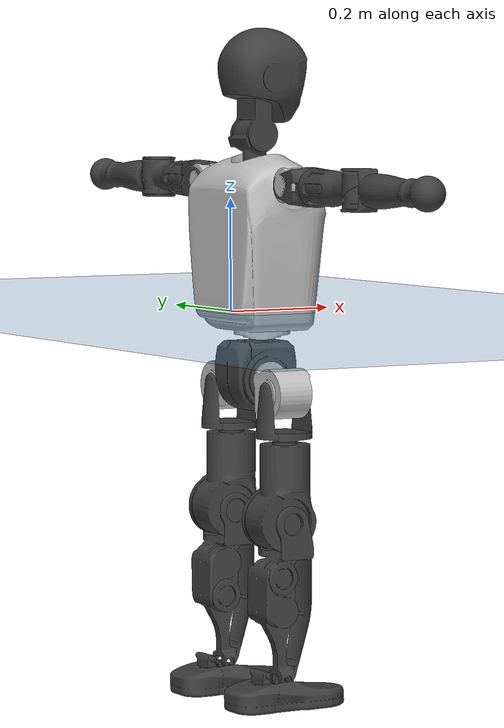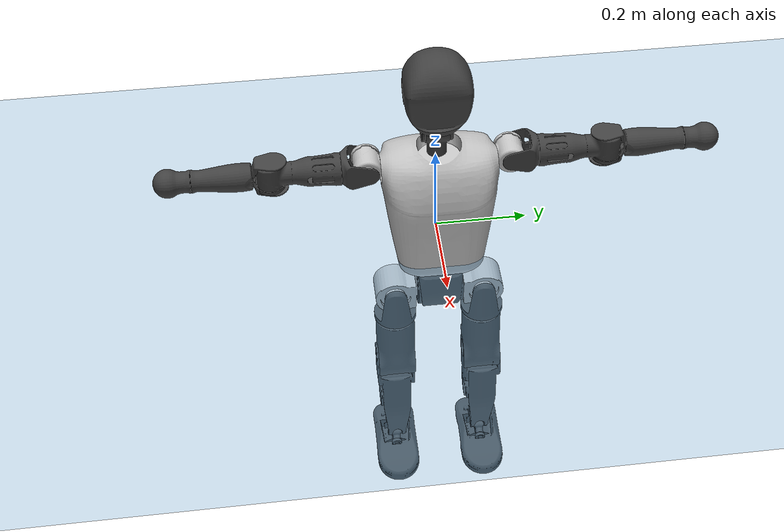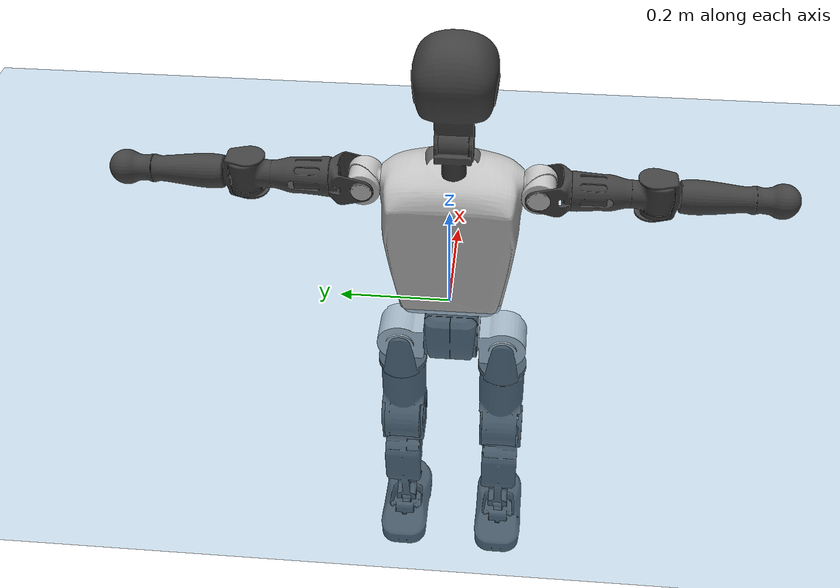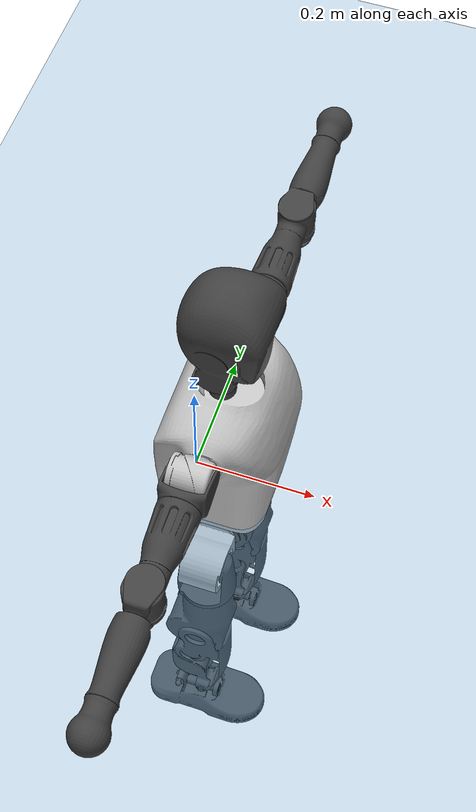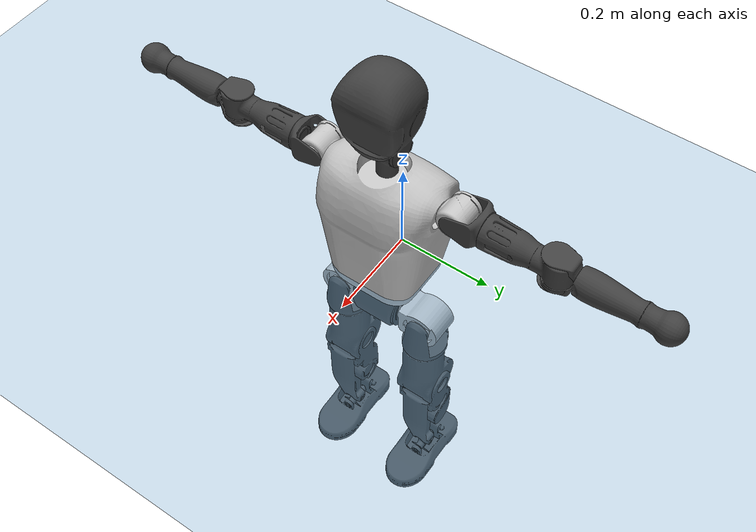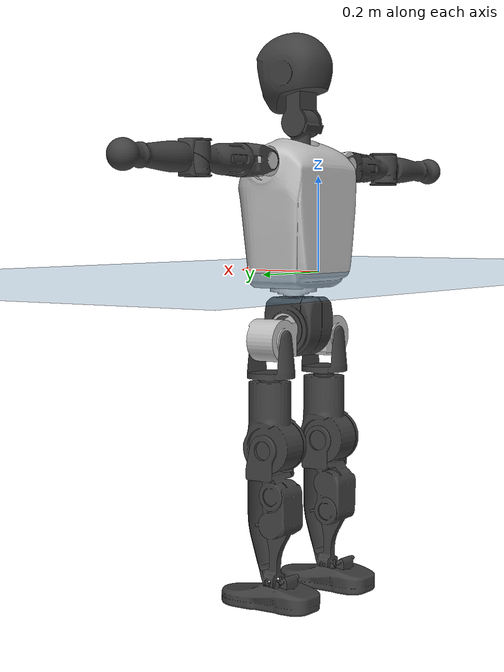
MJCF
<mujoco model="T1">
  <compiler angle="radian" assetdir="assets" balanceinertia="true" inertiafromgeom="false"/>

  <option timestep="0.005" density="1.2" viscosity="2e-05"/>

  <size nkey="1"/>

  <visual>
    <quality shadowsize="8192"/>
    <map shadowclip="0.5"/>
  </visual>

  <default>
    <default class="/">
      <joint armature="0.01" damping="0.01" frictionloss="0.1"/>
      <geom contype="0" conaffinity="0" group="1" solref="-1000 -80"/>
      <site size="0.01 0.005 0.005" group="5"/>
      <general forcelimited="true" biastype="affine" gainprm="25" biasprm="0 -25 -0.6"/>
      <default class="t1">
        <geom rgba="0.25 0.25 0.25 1"/>
        <default class="visual">
          <geom type="mesh" group="2"/>
        </default>
        <default class="collision">
          <geom group="3"/>
        </default>
        <default class="foot">
          <geom size="0.1115 0.05 0.015" type="box" condim="6" group="4" priority="1" solimp="0.015 1 0.015"/>
        </default>
        <default class="reward_collision_sphere">
          <geom group="5" rgba="1 0 0 1"/>
        </default>
      </default>
    </default>
  </default>

  <asset>
    <texture type="skybox" colorspace="auto" name="//unnamed_texture_0" builtin="gradient" rgb1="0.95 0.95 0.95" rgb2="0.95 0.95 0.95" width="100" height="600"/>
    <texture type="2d" colorspace="auto" name="texplane" builtin="checker" rgb1="0.345 0.575 0.748" rgb2="0.345 0.575 0.748" markrgb="1 1 1" width="512" height="512"/>
    <material name="MatPlane" class="/" texture="texplane" texuniform="true" texrepeat="2 2" specular="0.9"/>
    <mesh name="Trunk" class="/" file="Trunk.stl"/>
    <mesh name="H1" class="/" file="H1.stl"/>
    <mesh name="H2" class="/" file="H2.stl"/>
    <mesh name="AL1" class="/" file="AL1.stl"/>
    <mesh name="AL2" class="/" file="AL2.stl"/>
    <mesh name="AL3" class="/" file="AL3.stl"/>
    <mesh name="left_hand_link" class="/" file="left_hand_link.stl"/>
    <mesh name="AR1" class="/" file="AR1.stl"/>
    <mesh name="AR2" class="/" file="AR2.stl"/>
    <mesh name="AR3" class="/" file="AR3.stl"/>
    <mesh name="right_hand_link" class="/" file="right_hand_link.stl"/>
    <mesh name="Waist" class="/" file="Waist.stl"/>
    <mesh name="Hip_Pitch_Left" class="/" file="Hip_Pitch_Left.stl"/>
    <mesh name="Hip_Roll_Left" class="/" file="Hip_Roll_Left.stl"/>
    <mesh name="Hip_Yaw_Left" class="/" file="Hip_Yaw_Left.stl"/>
    <mesh name="Shank_Left" class="/" file="Shank_Left.stl"/>
    <mesh name="Ankle_Cross_Left" class="/" file="Ankle_Cross_Left.stl"/>
    <mesh name="left_foot_link" class="/" file="left_foot_link.stl"/>
    <mesh name="Hip_Pitch_Right" class="/" file="Hip_Pitch_Right.stl"/>
    <mesh name="Hip_Roll_Right" class="/" file="Hip_Roll_Right.stl"/>
    <mesh name="Hip_Yaw_Right" class="/" file="Hip_Yaw_Right.stl"/>
    <mesh name="Shank_Right" class="/" file="Shank_Right.stl"/>
    <mesh name="Ankle_Cross_Right" class="/" file="Ankle_Cross_Right.stl"/>
    <mesh name="right_foot_link" class="/" file="right_foot_link.stl"/>
  </asset>

  <worldbody>
    <geom name="floor" class="/" size="100 100 0.125" type="plane" group="0" material="MatPlane"/>
    <light name="toplight_shadow" class="/" pos="0 0 5" dir="0.0990148 0.0990148 -0.990148" type="directional" ambient="0.04 0.04 0.04" diffuse="0.55 0.55 0.55" specular="0.12 0.12 0.12"/>
    <light name="toplight_fill" class="/" pos="0 0 5" dir="0.0990148 0.0990148 -0.990148" type="directional" castshadow="false" ambient="0.04 0.04 0.04" diffuse="0.3 0.3 0.3" specular="0.08 0.08 0.08"/>
    <body name="trunk" childclass="t1" pos="0.00128966 -0.000305981 -0.000279902" quat="1 -0.000120095 -0.00028006 0.000325317">
      <inertial pos="0.0423984 -0.000233595 0.108734" quat="0.999949 0.00270669 -0.00928847 0.00306453" mass="9.48732" diaginertia="0.0266001 0.0585744 0.0677008"/>
      <joint name="//unnamed_joint_0" type="free" armature="0" damping="0" frictionloss="0"/>
      <geom name="//unnamed_geom_1" class="visual" rgba="0.76 0.76 0.76 1" mesh="Trunk"/>
      <geom name="//unnamed_geom_2" class="collision" size="0.0690037 0.0920049 0.138007" pos="0.0465709 0 0.124433" type="box"/>
      <geom name="//unnamed_geom_3" class="reward_collision_sphere" size="0.105806" pos="0.0465709 0 0.103694"/>
      <geom name="//unnamed_geom_4" class="reward_collision_sphere" size="0.0138007" pos="0.0465709 0.080497 0"/>
      <geom name="//unnamed_geom_5" class="reward_collision_sphere" size="0.0138007" pos="0.0465709 -0.080497 0"/>
      <geom name="//unnamed_geom_6" class="reward_collision_sphere" size="0.0138007" pos="0.0465709 0.101331 0.18665"/>
      <geom name="//unnamed_geom_7" class="reward_collision_sphere" size="0.0138007" pos="0.0465709 -0.101331 0.18665"/>
      <site name="imu" pos="-0.0130273 0.00128506 0.00859889" size="0.00920049"/>
      <camera name="track" pos="0 -1.89405 0" quat="0.707107 0.707107 0 0" mode="trackcom"/>
      <camera name="ego_camera" pos="0.0946941 0 0.435516" quat="-0.5 -0.5 0.5 0.5"/>
      <body name="H1" pos="0.0454839 -0.00290031 0.249116" quat="1 3.8786e-05 0.000233137 -0.000532176">
        <inertial pos="-0.00228334 -0.00199711 0.0594342" quat="0.765262 -0.0249318 -0.00360262 0.643225" mass="0.353206" diaginertia="6.82243e-05 0.000163918 0.000178724"/>
        <joint name="AAHead_yaw" pos="0 0 0" axis="0.00187519 -0.0130497 0.999913" range="-1.58145 1.55546" armature="0.0102041" damping="0.0065861" frictionloss="0.0945575"/>
        <geom name="//unnamed_geom_8" class="visual" mesh="H1"/>
        <body name="H2" pos="-0.0014099 -0.000463856 0.0640828" quat="0.999999 -1.41864e-05 0.00101711 -4.1587e-05">
          <inertial pos="0.00570066 -0.00172719 0.102119" quat="0.988623 0.103241 -0.0782316 -0.0764554" mass="0.51084" diaginertia="0.000584095 0.00148713 0.00210189"/>
          <joint name="Head_pitch" pos="0 0 0" axis="-0.000291336 -1 -2.32265e-05" range="-1.24313 0.348451" armature="0.00978918" damping="0.0104427" frictionloss="0.0927608"/>
          <geom name="//unnamed_geom_9" class="visual" mesh="H2"/>
          <geom name="//unnamed_geom_10" class="collision" size="0.0736039" pos="0.00776181 0 0.114064"/>
          <geom name="//unnamed_geom_11" class="reward_collision_sphere" size="0.0828044" pos="0.0155236 0 0.103694"/>
        </body>
      </body>
      <body name="AL1" pos="0.0458487 0.103961 0.228105" quat="1 4.13825e-06 0.000441393 -3.39441e-06">
        <inertial pos="-0.00310948 0.0450585 -0.0019873" quat="0.503824 0.491666 -0.505585 0.498809" mass="0.416746" diaginertia="0.000392114 0.00100045 0.000351424"/>
        <joint name="Left_Shoulder_Pitch" pos="0 0 0" axis="0.0047241 0.999986 -0.00248486" stiffness="0.0104214" range="-3.30835 1.2186" armature="0.00974952" damping="0.00544163" frictionloss="0.0852012"/>
        <geom name="//unnamed_geom_12" class="visual" rgba="0.76 0.76 0.76 1" mesh="AL1"/>
        <body name="AL2" pos="-0.000866745 0.047786 0.00136587" quat="1 -5.17182e-06 -0.00018705 4.15781e-05">
          <inertial pos="0.00296691 0.0370017 0.000176471" quat="0.488152 0.511824 -0.487842 0.511619" mass="0.125455" diaginertia="0.000119528 0.000280509 0.000215795"/>
          <joint name="Left_Shoulder_Roll" pos="0 0 0" axis="-1 0.000921211 0.000204302" range="-1.54627 1.691" armature="0.0092963" damping="0.0198249" frictionloss="0.0929356"/>
          <geom name="//unnamed_geom_13" class="visual" mesh="AL2"/>
          <body name="AL3" pos="0.00324982 0.0571533 -0.00024875" quat="1 -7.55561e-05 0.000473546 0.000428957">
            <inertial pos="5.22352e-05 0.0796719 0.00189717" quat="0.713368 0.700783 -4.05912e-06 0.00304282" mass="0.791452" diaginertia="0.00367675 0.00964901 0.000735523"/>
            <joint name="Left_Elbow_Pitch" pos="0 0 0" axis="-0.00010562 -0.999997 0.00256576" range="-2.27538 2.31244" armature="0.00809646" damping="0.00433671" frictionloss="0.0901408"/>
            <geom name="//unnamed_geom_14" class="visual" mesh="AL3"/>
            <geom name="//unnamed_geom_15" class="collision" size="0.0276015 0.0690037" pos="0 0.0473512 0" quat="0.707105 0.707108 0 0" type="cylinder"/>
            <geom name="//unnamed_geom_16" class="reward_collision_sphere" size="0.0331218"/>
            <body name="left_hand_link" pos="7.51119e-05 0.139491 -0.000135159" quat="1 -0.000265929 -0.000415975 -0.000829171">
              <inertial pos="0.00247119 0.101625 0.00111347" quat="0.709609 0.704593 0.00172632 0.00084468" mass="0.25122" diaginertia="0.0022889 0.00621942 0.000250236"/>
              <joint name="Left_Elbow_Yaw" pos="0 0 0" axis="-0.00164662 0.00158695 0.999997" range="-2.43562 -0.017836" armature="0.0101122" damping="0.0204773" frictionloss="0.101268"/>
              <geom name="//unnamed_geom_17" class="visual" mesh="left_hand_link"/>
              <geom name="//unnamed_geom_18" class="collision" size="0.0276015 0.0805043" pos="0 0.123113 0" quat="0.707105 0.707108 0 0" type="cylinder"/>
              <geom name="//unnamed_geom_19" class="reward_collision_sphere" size="0.0460025"/>
              <geom name="//unnamed_geom_20" class="reward_collision_sphere" size="0.0322017" pos="0 0.104173 0"/>
              <geom name="//unnamed_geom_21" class="reward_collision_sphere" size="0.0322017" pos="0 0.20361 0"/>
            </body>
          </body>
        </body>
      </body>
      <body name="AR1" pos="0.0458355 -0.102271 0.227104" quat="1 0.000449405 0.000464145 0.000203312">
        <inertial pos="-0.000844592 -0.0436882 8.3941e-07" quat="0.504511 0.495388 -0.503803 0.496227" mass="0.413014" diaginertia="0.000389579 0.000991391 0.000349271"/>
        <joint name="Right_Shoulder_Pitch" pos="0 0 0" axis="0.00165645 -0.999999 -0.000403067" stiffness="0.01193" range="-1.21605 3.29094" armature="0.0097933" damping="0" frictionloss="0.0884762"/>
        <geom name="//unnamed_geom_22" class="visual" rgba="0.76 0.76 0.76 1" mesh="AR1"/>
        <body name="AR2" pos="0.00121563 -0.0437392 -0.00251741" quat="1 -0.000221024 -0.000208279 -3.24274e-05">
          <inertial pos="0.00212929 -0.0340189 -0.00239367" quat="0.512128 0.487766 -0.511855 0.487662" mass="0.126988" diaginertia="0.000114924 0.000258751 0.00021448"/>
          <joint name="Right_Shoulder_Roll" pos="0 0 0" axis="-0.999901 -0.00303231 0.0137725" range="-1.68756 1.58199" armature="0.00917382" damping="0.0214785" frictionloss="0.0895118"/>
          <geom name="//unnamed_geom_23" class="visual" mesh="AR2"/>
          <body name="AR3" pos="0.00109234 -0.0563965 -0.000565156" quat="1 -0.000126857 -0.000121724 9.50151e-05">
            <inertial pos="-0.00294378 -0.0815335 -0.000391637" quat="0.706789 0.707422 -0.0017072 -0.000963404" mass="0.792209" diaginertia="0.00365152 0.00970289 0.000765822"/>
            <joint name="Right_Elbow_Pitch" pos="0 0 0" axis="0.00112693 0.999999 0.000795258" range="-2.27194 2.243" armature="0.00932459" damping="0.0140326" frictionloss="0.0800929"/>
            <geom name="//unnamed_geom_24" class="visual" mesh="AR3"/>
            <geom name="//unnamed_geom_25" class="collision" size="0.0276015 0.0690037" pos="0 -0.0473512 0" quat="0.707105 0.707108 0 0" type="cylinder"/>
            <geom name="//unnamed_geom_26" class="reward_collision_sphere" size="0.0331218"/>
            <body name="right_hand_link" pos="4.48284e-05 -0.138323 -0.000645174" quat="1 -0.000137346 0.000335001 0.000123555">
              <inertial pos="0.000646189 -0.102816 0.0032201" quat="0.706425 0.707788 0.000167071 0.000163464" mass="0.255998" diaginertia="0.00228342 0.00604209 0.000259642"/>
              <joint name="Right_Elbow_Yaw" pos="0 0 0" axis="-0.000113476 0.00172545 0.999999" stiffness="0.00461758" range="0.0157062 2.45487" armature="0.00906469" damping="0.00637251" frictionloss="0.0804791"/>
              <geom name="//unnamed_geom_27" class="visual" mesh="right_hand_link"/>
              <geom name="//unnamed_geom_28" class="collision" size="0.0276015 0.0805043" pos="0 -0.123113 0" quat="0.707105 0.707108 0 0" type="cylinder"/>
              <geom name="//unnamed_geom_29" class="reward_collision_sphere" size="0.0460025"/>
              <geom name="//unnamed_geom_30" class="reward_collision_sphere" size="0.0322017" pos="0 -0.104173 0"/>
              <geom name="//unnamed_geom_31" class="reward_collision_sphere" size="0.0322017" pos="0 -0.20361 0"/>
            </body>
          </body>
        </body>
      </body>
      <body name="Waist" pos="0.0490947 -0.000279619 -0.120618" quat="1 -0.000380279 0.000321112 -0.000364594">
        <inertial pos="0.00147778 -0.000453423 0.0071913" quat="0.983671 -0.00302946 -0.179922 0.00318605" mass="1.96342" diaginertia="0.00155647 0.0039706 0.00585215"/>
        <joint name="Waist" pos="0 0 0" axis="-0.0084084 -0.00681771 0.999941" range="-1.58906 1.55371" armature="0.00908871" damping="0.00814493" frictionloss="0.0805769"/>
        <geom name="//unnamed_geom_32" class="visual" mesh="Waist"/>
        <body name="Hip_Pitch_Left" pos="0.00215818 0.099028 0.000621816" quat="1 0.000677409 0.000123226 -0.000340368">
          <inertial pos="0.00073471 -0.00933618 -0.019593" quat="0.975197 0.220843 0.0145451 0.00292438" mass="0.789517" diaginertia="0.000500554 0.00113442 0.00154306"/>
          <joint name="Left_Hip_Pitch" pos="0 0 0" axis="-0.0006789 0.999999 0.000858152" stiffness="0.00286051" range="-1.78546 1.57535" armature="0.0098038" damping="0.0210339" frictionloss="0.0926886"/>
          <geom name="//unnamed_geom_33" class="visual" rgba="0.76 0.76 0.76 1" mesh="Hip_Pitch_Left"/>
          <body name="Hip_Roll_Left" pos="0.00266843 -0.000365772 -0.0211308" quat="0.999999 0.000496675 0.0013425 -0.000213563">
            <inertial pos="0.00254285 0.000922651 -0.0557095" quat="0.708979 -0.00629696 -0.00540047 0.70518" mass="0.282419" diaginertia="0.000459165 0.00111898 0.000590944"/>
            <joint name="Left_Hip_Roll" pos="0 0 0" axis="-0.999913 0.0100005 0.00865489" range="-1.51518 0.206367" armature="0.00887009" damping="0.00325505" frictionloss="0.0938134"/>
            <geom name="//unnamed_geom_34" class="visual" mesh="Hip_Roll_Left"/>
            <geom name="//unnamed_geom_35" class="reward_collision_sphere" size="0.0506027"/>
            <body name="Hip_Yaw_Left" pos="0.00144939 -0.000814877 -0.08505" quat="0.999999 0.0011704 0.0002119 -0.000541072">
              <inertial pos="-0.00778446 0.00086732 -0.0918474" quat="0.693294 -0.0361302 -0.0314761 0.71906" mass="1.69231" diaginertia="0.0075601 0.0195949 0.00315333"/>
              <joint name="Left_Hip_Yaw" pos="0 0 0" axis="-0.000563624 -0.000103742 -1" range="-0.952057 1.05593" armature="0.00921781" damping="0.00679446" frictionloss="0.101913"/>
              <geom name="//unnamed_geom_36" class="visual" mesh="Hip_Yaw_Left"/>
              <geom name="//unnamed_geom_37" class="collision" size="0.0460025 0.0736039" type="cylinder"/>
              <body name="Shank_Left" pos="-0.0113206 0.00204085 -0.138976" quat="1 -2.86999e-05 -0.00010481 -4.36492e-05">
                <inertial pos="-0.00729344 -0.000108272 -0.129886" quat="0.997807 0.00998037 -0.0306335 0.0578176" mass="1.33993" diaginertia="0.00981997 0.0273376 0.00228116"/>
                <joint name="Left_Knee_Pitch" pos="0 0 0" axis="0.00867834 0.999957 0.00335323" range="0.00227905 2.37749" armature="0.00845287" damping="0.00767966" frictionloss="0.104112"/>
                <geom name="//unnamed_geom_38" class="visual" mesh="Shank_Left"/>
                <geom name="//unnamed_geom_39" class="collision" size="0.0460025 0.0690037" pos="0 0 -0.124433" type="cylinder"/>
                <geom name="//unnamed_geom_40" class="reward_collision_sphere" size="0.0598032"/>
                <body name="Ankle_Cross_Left" pos="0.00167282 0.000277021 -0.291343" quat="1 9.16528e-06 -8.28863e-05 -7.26408e-06">
                  <inertial pos="-0.00298223 -0.000738868 -0.00820587" quat="0.442689 0.551429 0.551245 0.442811" mass="0.057204" diaginertia="8.23088e-06 1.96575e-05 1.35216e-05"/>
                  <joint name="Left_Ankle_Pitch" pos="0 0 0" axis="-0.00241325 0.999971 -0.00720889" range="-0.874441 0.32076" armature="0.0104262" damping="0.0142743" frictionloss="0.0922058"/>
                  <geom name="//unnamed_geom_41" class="visual" mesh="Ankle_Cross_Left"/>
                  <body name="left_foot_link" pos="0.00190105 -0.000113819 -0.0126841" quat="1 9.73986e-05 -2.69912e-05 4.43554e-05">
                    <inertial pos="-0.00265504 0.00150226 -0.00951249" quat="-0.00135461 0.620297 0.00239635 0.784362" mass="0.538889" diaginertia="0.000753645 0.00178983 0.00254297"/>
                    <joint name="Left_Ankle_Roll" pos="0 0 0" axis="-0.999989 0.00049164 0.00475579" range="-0.427468 0.436998" armature="0.00929752" damping="0.000353124" frictionloss="0.0949008"/>
                    <geom name="//unnamed_geom_42" class="visual" mesh="left_foot_link"/>
                    <geom name="left_foot" class="foot" size="0.101481 0.0444592 0.0140078" pos="0.00776181 0 -0.0155541"/>
                    <geom name="//unnamed_geom_44" class="reward_collision_sphere" size="0.0478426" pos="0.00776181 0 -0.0155541"/>
                    <geom name="//unnamed_geom_45" class="reward_collision_sphere" size="0.0276015" pos="0.0737372 -0.0217815 -0.0155541"/>
                    <geom name="//unnamed_geom_46" class="reward_collision_sphere" size="0.0276015" pos="-0.0543327 -0.0217815 -0.0155541"/>
                    <site name="left_foot" class="foot" pos="0.00776181 0 -0.0155541" size="0.00920049"/>
                  </body>
                </body>
              </body>
            </body>
          </body>
        </body>
        <body name="Hip_Pitch_Right" pos="-0.000333042 -0.0996211 -0.000940856" quat="1 -0.00019685 2.0571e-05 5.15456e-05">
          <inertial pos="0.00089729 0.00732469 -0.0209075" quat="0.974521 -0.223801 0.0145536 -0.0032539" mass="0.791419" diaginertia="0.00049148 0.00114901 0.00149747"/>
          <joint name="Right_Hip_Pitch" pos="0 0 0" axis="0.000489198 -0.999997 -0.00238012" range="-1.62274 1.85322" armature="0.00926329" damping="0.0190304" frictionloss="0.0801416"/>
          <geom name="//unnamed_geom_47" class="visual" rgba="0.76 0.76 0.76 1" mesh="Hip_Pitch_Right"/>
          <body name="Hip_Roll_Right" pos="0.00274896 0.00033302 -0.0216098" quat="1 0.000146085 -0.000243938 -0.000252318">
            <inertial pos="0.00194133 -0.00234583 -0.0536369" quat="0.708338 -0.00165589 -0.00673681 0.705839" mass="0.291655" diaginertia="0.000479626 0.00113127 0.000620089"/>
            <joint name="Right_Hip_Roll" pos="0 0 0" axis="-0.999889 -0.0121485 0.00865336" stiffness="0.000345642" range="-0.205374 1.59351" armature="0.00862598" damping="0.00515065" frictionloss="0.0874842"/>
            <geom name="//unnamed_geom_48" class="visual" mesh="Hip_Roll_Right"/>
            <geom name="//unnamed_geom_49" class="reward_collision_sphere" size="0.0506027"/>
            <body name="Hip_Yaw_Right" pos="-0.00103059 -0.000444934 -0.0874643" quat="1 3.89187e-05 -0.000260386 -0.000112622">
              <inertial pos="-0.00463389 0.00201025 -0.0936519" quat="0.707263 -0.0258301 -0.0283596 0.705909" mass="1.69412" diaginertia="0.00733941 0.019405 0.00314042"/>
              <joint name="Right_Hip_Yaw" pos="0 0 0" axis="0.00218666 -0.0018835 -0.999996" stiffness="0.00134827" range="-0.987119 0.98329" armature="0.00969752" damping="0.0152672" frictionloss="0.0914561"/>
              <geom name="//unnamed_geom_50" class="visual" mesh="Hip_Yaw_Right"/>
              <geom name="//unnamed_geom_51" class="collision" size="0.0460025 0.0736039" type="cylinder"/>
              <body name="Shank_Right" pos="-0.0100359 -0.00281464 -0.137462" quat="1 -2.59653e-05 8.23933e-06 -4.47152e-06">
                <inertial pos="-0.00716923 0.00215577 -0.127475" quat="0.998957 -0.00744773 -0.0309554 -0.032727" mass="1.41802" diaginertia="0.00954017 0.0258156 0.00233044"/>
                <joint name="Right_Knee_Pitch" pos="0 0 0" axis="0.00439996 -0.999984 -0.00349058" stiffness="0.000534092" range="-2.35281 0.00628406" armature="0.00918661" damping="0.00194368" frictionloss="0.0921769"/>
                <geom name="//unnamed_geom_52" class="visual" mesh="Shank_Right"/>
                <geom name="//unnamed_geom_53" class="collision" size="0.0460025 0.0690037" pos="0 0 -0.124433" type="cylinder"/>
                <geom name="//unnamed_geom_54" class="reward_collision_sphere" size="0.0598032"/>
                <body name="Ankle_Cross_Right" pos="-0.00102218 -0.00136752 -0.290017" quat="1 8.76503e-05 8.40615e-05 5.9972e-06">
                  <inertial pos="-0.00192146 -0.00202093 -0.00929663" quat="0.446311 0.559659 0.542327 0.439851" mass="0.056936" diaginertia="8.17701e-06 1.83246e-05 1.3092e-05"/>
                  <joint name="Right_Ankle_Pitch" pos="0 0 0" axis="-0.00425903 -0.999973 0.00595138" range="-0.345779 0.86926" armature="0.00985441" damping="0" frictionloss="0.0895985"/>
                  <geom name="//unnamed_geom_55" class="visual" mesh="Ankle_Cross_Right"/>
                  <body name="right_foot_link" pos="-0.000715087 -0.00151406 -0.00976921" quat="1 -2.37247e-05 1.15323e-05 6.07317e-06">
                    <inertial pos="0.000938092 -0.000457579 -0.00701885" quat="0.0026943 0.618007 -0.00159002 0.786166" mass="0.539697" diaginertia="0.000781337 0.00179593 0.00260123"/>
                    <joint name="Right_Ankle_Roll" pos="0 0 0" axis="-0.999992 -0.0037465 -0.00170573" stiffness="0.00136374" range="-0.451547 0.416187" armature="0.00943357" damping="0.0125008" frictionloss="0.0858553"/>
                    <geom name="//unnamed_geom_56" class="visual" mesh="right_foot_link"/>
                    <geom name="right_foot" class="foot" size="0.103166 0.0440678 0.0138166" pos="0.00776181 0 -0.0155541"/>
                    <geom name="//unnamed_geom_58" class="reward_collision_sphere" size="0.036802"/>
                    <geom name="//unnamed_geom_59" class="reward_collision_sphere" size="0.0276015" pos="0.00776181 0 -0.0155541"/>
                    <geom name="//unnamed_geom_60" class="reward_collision_sphere" size="0.0276015" pos="0.0737372 0.0217815 -0.0155541"/>
                    <geom name="//unnamed_geom_61" class="reward_collision_sphere" size="0.0276015" pos="-0.0543327 0.0217815 -0.0155541"/>
                    <site name="right_foot" class="foot" pos="0.00776181 0 -0.0155541" size="0.00920049"/>
                  </body>
                </body>
              </body>
            </body>
          </body>
        </body>
      </body>
    </body>
  </worldbody>

  <contact>
    <pair class="/" geom1="floor" geom2="left_foot" name="//unnamed_contact_0"/>
    <pair class="/" geom1="floor" geom2="right_foot" name="//unnamed_contact_1"/>
  </contact>

  <actuator>
    <general name="AAHead_yaw" class="/" joint="AAHead_yaw" forcerange="-6.81078 6.81078" gainprm="22.5145" biasprm="0 -22.5145 -0.512364"/>
    <general name="Head_pitch" class="/" joint="Head_pitch" forcerange="-6.20693 6.20693" gainprm="22.5145" biasprm="0 -22.5145 -0.512364"/>
    <general name="Left_Shoulder_Pitch" class="/" joint="Left_Shoulder_Pitch" forcerange="-16.5649 16.5649" gainprm="22.5145" biasprm="0 -22.5145 -0.512364"/>
    <general name="Left_Shoulder_Roll" class="/" joint="Left_Shoulder_Roll" forcerange="-16.1748 16.1748" gainprm="22.5145" biasprm="0 -22.5145 -0.512364"/>
    <general name="Left_Elbow_Pitch" class="/" joint="Left_Elbow_Pitch" forcerange="-17.7093 17.7093" gainprm="22.5145" biasprm="0 -22.5145 -0.512364"/>
    <general name="Left_Elbow_Yaw" class="/" joint="Left_Elbow_Yaw" forcerange="-17.1335 17.1335" gainprm="22.5145" biasprm="0 -22.5145 -0.512364"/>
    <general name="Right_Shoulder_Pitch" class="/" joint="Right_Shoulder_Pitch" forcerange="-16.8059 16.8059" gainprm="22.5145" biasprm="0 -22.5145 -0.512364"/>
    <general name="Right_Shoulder_Roll" class="/" joint="Right_Shoulder_Roll" forcerange="-17.192 17.192" gainprm="22.5145" biasprm="0 -22.5145 -0.512364"/>
    <general name="Right_Elbow_Pitch" class="/" joint="Right_Elbow_Pitch" forcerange="-16.6803 16.6803" gainprm="22.5145" biasprm="0 -22.5145 -0.512364"/>
    <general name="Right_Elbow_Yaw" class="/" joint="Right_Elbow_Yaw" forcerange="-15.8463 15.8463" gainprm="22.5145" biasprm="0 -22.5145 -0.512364"/>
    <general name="Waist" class="/" joint="Waist" forcerange="-28.4663 28.4663" gainprm="22.5145" biasprm="0 -22.5145 -0.512364"/>
    <general name="Left_Hip_Pitch" class="/" joint="Left_Hip_Pitch" forcerange="-41.0804 41.0804" gainprm="22.5145" biasprm="0 -22.5145 -0.512364"/>
    <general name="Left_Hip_Roll" class="/" joint="Left_Hip_Roll" forcerange="-26.6763 26.6763" gainprm="22.5145" biasprm="0 -22.5145 -0.512364"/>
    <general name="Left_Hip_Yaw" class="/" joint="Left_Hip_Yaw" forcerange="-25.787 25.787" gainprm="22.5145" biasprm="0 -22.5145 -0.512364"/>
    <general name="Left_Knee_Pitch" class="/" joint="Left_Knee_Pitch" forcerange="-54.7807 54.7807" gainprm="22.5145" biasprm="0 -22.5145 -0.512364"/>
    <general name="Left_Ankle_Pitch" class="/" joint="Left_Ankle_Pitch" forcerange="-18.1384 18.1384" gainprm="22.5145" biasprm="0 -22.5145 -0.512364"/>
    <general name="Left_Ankle_Roll" class="/" joint="Left_Ankle_Roll" forcerange="-13.5129 13.5129" gainprm="22.5145" biasprm="0 -22.5145 -0.512364"/>
    <general name="Right_Hip_Pitch" class="/" joint="Right_Hip_Pitch" forcerange="-40.8684 40.8684" gainprm="22.5145" biasprm="0 -22.5145 -0.512364"/>
    <general name="Right_Hip_Roll" class="/" joint="Right_Hip_Roll" forcerange="-28.3105 28.3105" gainprm="22.5145" biasprm="0 -22.5145 -0.512364"/>
    <general name="Right_Hip_Yaw" class="/" joint="Right_Hip_Yaw" forcerange="-28.4493 28.4493" gainprm="22.5145" biasprm="0 -22.5145 -0.512364"/>
    <general name="Right_Knee_Pitch" class="/" joint="Right_Knee_Pitch" forcerange="-51.1515 51.1515" gainprm="22.5145" biasprm="0 -22.5145 -0.512364"/>
    <general name="Right_Ankle_Pitch" class="/" joint="Right_Ankle_Pitch" forcerange="-16.7722 16.7722" gainprm="22.5145" biasprm="0 -22.5145 -0.512364"/>
    <general name="Right_Ankle_Roll" class="/" joint="Right_Ankle_Roll" forcerange="-13.3681 13.3681" gainprm="22.5145" biasprm="0 -22.5145 -0.512364"/>
  </actuator>

  <sensor>
    <gyro site="imu" name="imu_angular_velocity"/>
    <velocimeter site="imu" name="imu_linear_velocity"/>
    <framelinvel objtype="site" objname="left_foot" name="left_foot_global_linear_velocity"/>
    <framelinvel objtype="site" objname="right_foot" name="right_foot_global_linear_velocity"/>
  </sensor>

  <keyframe>
    <key name="home" qpos="0 0 0.6385 1 0 0 0 0 0 0 1.4 0 -0.4 0 -1.4 0 0.4 0 -0.4 0 0 0.8 -0.4 0 0.4 0 0 -0.8 0.4 0"/>
  </keyframe>
</mujoco>
